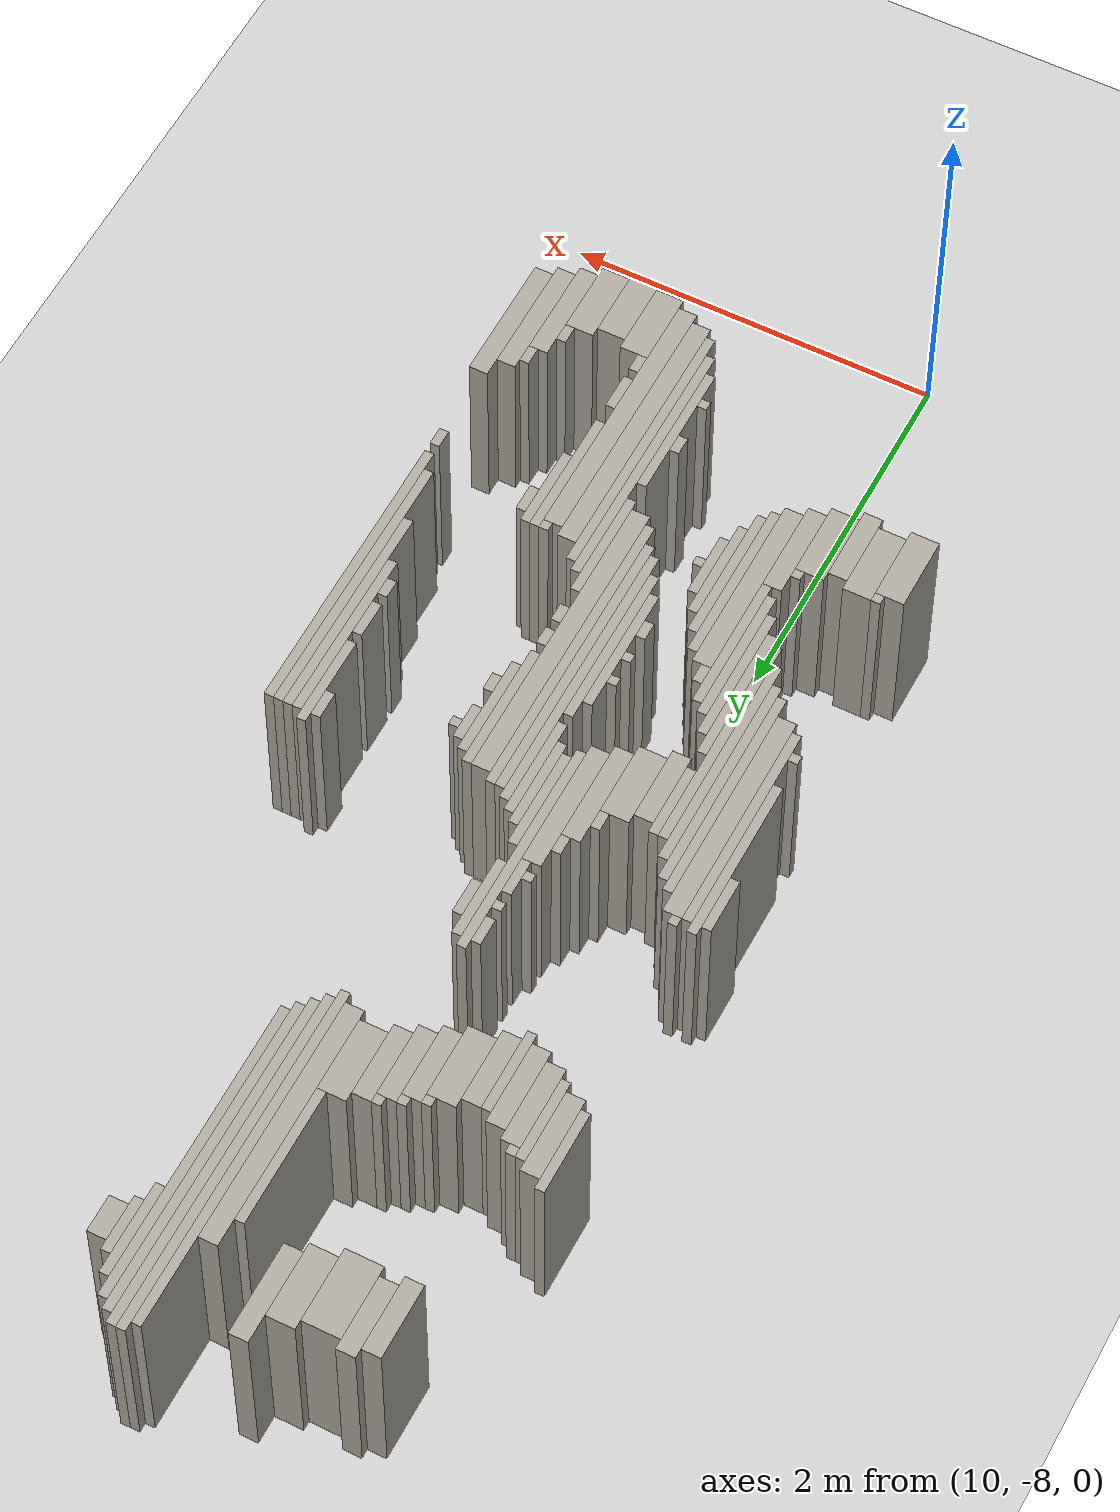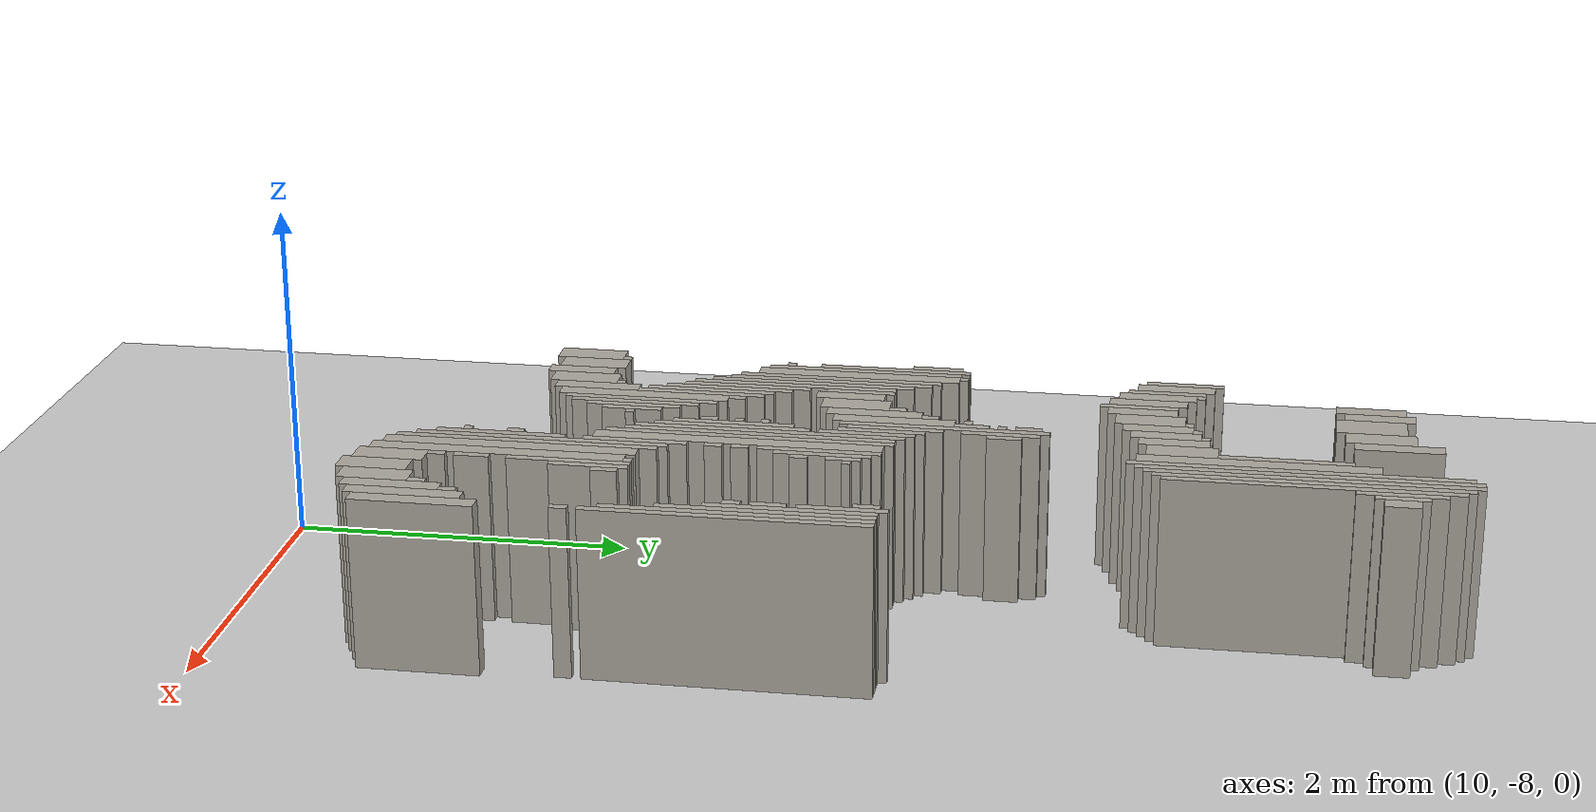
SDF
<sdf version="1.6">
 <world name="fr079_office">
  <include><uri>model://sun</uri></include>
  <include><uri>model://ground_plane</uri></include>
  <model name="fr079_office_walls">
   <static>true</static>
   <link name="w0021">
    <pose>11.277 -7.106 0.500 0 0 0</pose>
    <collision name="c"><geometry><box><size>0.150 0.400 1.000</size></box></geometry></collision>
    <visual name="v">
     <geometry><box><size>0.150 0.400 1.000</size></box></geometry>
     <material><ambient>0.68 0.66 0.62 1</ambient><diffuse>0.68 0.66 0.62 1</diffuse></material>
    </visual>
   </link>
   <link name="w0045">
    <pose>11.127 -7.056 0.500 0 0 0</pose>
    <collision name="c"><geometry><box><size>0.150 0.400 1.000</size></box></geometry></collision>
    <visual name="v">
     <geometry><box><size>0.150 0.400 1.000</size></box></geometry>
     <material><ambient>0.68 0.66 0.62 1</ambient><diffuse>0.68 0.66 0.62 1</diffuse></material>
    </visual>
   </link>
   <link name="w0046">
    <pose>11.427 -7.056 0.500 0 0 0</pose>
    <collision name="c"><geometry><box><size>0.150 0.400 1.000</size></box></geometry></collision>
    <visual name="v">
     <geometry><box><size>0.150 0.400 1.000</size></box></geometry>
     <material><ambient>0.68 0.66 0.62 1</ambient><diffuse>0.68 0.66 0.62 1</diffuse></material>
    </visual>
   </link>
   <link name="w0070">
    <pose>11.002 -6.481 0.500 0 0 0</pose>
    <collision name="c"><geometry><box><size>0.100 1.450 1.000</size></box></geometry></collision>
    <visual name="v">
     <geometry><box><size>0.100 1.450 1.000</size></box></geometry>
     <material><ambient>0.68 0.66 0.62 1</ambient><diffuse>0.68 0.66 0.62 1</diffuse></material>
    </visual>
   </link>
   <link name="w0071">
    <pose>11.552 -6.931 0.500 0 0 0</pose>
    <collision name="c"><geometry><box><size>0.100 0.550 1.000</size></box></geometry></collision>
    <visual name="v">
     <geometry><box><size>0.100 0.550 1.000</size></box></geometry>
     <material><ambient>0.68 0.66 0.62 1</ambient><diffuse>0.68 0.66 0.62 1</diffuse></material>
    </visual>
   </link>
   <link name="w0096">
    <pose>10.902 -6.431 0.500 0 0 0</pose>
    <collision name="c"><geometry><box><size>0.100 1.450 1.000</size></box></geometry></collision>
    <visual name="v">
     <geometry><box><size>0.100 1.450 1.000</size></box></geometry>
     <material><ambient>0.68 0.66 0.62 1</ambient><diffuse>0.68 0.66 0.62 1</diffuse></material>
    </visual>
   </link>
   <link name="w0097">
    <pose>11.652 -6.831 0.500 0 0 0</pose>
    <collision name="c"><geometry><box><size>0.100 0.650 1.000</size></box></geometry></collision>
    <visual name="v">
     <geometry><box><size>0.100 0.650 1.000</size></box></geometry>
     <material><ambient>0.68 0.66 0.62 1</ambient><diffuse>0.68 0.66 0.62 1</diffuse></material>
    </visual>
   </link>
   <link name="w0119">
    <pose>10.827 -6.356 0.500 0 0 0</pose>
    <collision name="c"><geometry><box><size>0.050 1.500 1.000</size></box></geometry></collision>
    <visual name="v">
     <geometry><box><size>0.050 1.500 1.000</size></box></geometry>
     <material><ambient>0.68 0.66 0.62 1</ambient><diffuse>0.68 0.66 0.62 1</diffuse></material>
    </visual>
   </link>
   <link name="w0120">
    <pose>11.752 -6.756 0.500 0 0 0</pose>
    <collision name="c"><geometry><box><size>0.100 0.700 1.000</size></box></geometry></collision>
    <visual name="v">
     <geometry><box><size>0.100 0.700 1.000</size></box></geometry>
     <material><ambient>0.68 0.66 0.62 1</ambient><diffuse>0.68 0.66 0.62 1</diffuse></material>
    </visual>
   </link>
   <link name="w0147">
    <pose>10.777 -6.281 0.500 0 0 0</pose>
    <collision name="c"><geometry><box><size>0.050 1.450 1.000</size></box></geometry></collision>
    <visual name="v">
     <geometry><box><size>0.050 1.450 1.000</size></box></geometry>
     <material><ambient>0.68 0.66 0.62 1</ambient><diffuse>0.68 0.66 0.62 1</diffuse></material>
    </visual>
   </link>
   <link name="w0173">
    <pose>10.727 -6.531 0.500 0 0 0</pose>
    <collision name="c"><geometry><box><size>0.050 0.750 1.000</size></box></geometry></collision>
    <visual name="v">
     <geometry><box><size>0.050 0.750 1.000</size></box></geometry>
     <material><ambient>0.68 0.66 0.62 1</ambient><diffuse>0.68 0.66 0.62 1</diffuse></material>
    </visual>
   </link>
   <link name="w0193">
    <pose>11.077 -6.806 0.500 0 0 0</pose>
    <collision name="c"><geometry><box><size>0.050 0.100 1.000</size></box></geometry></collision>
    <visual name="v">
     <geometry><box><size>0.050 0.100 1.000</size></box></geometry>
     <material><ambient>0.68 0.66 0.62 1</ambient><diffuse>0.68 0.66 0.62 1</diffuse></material>
    </visual>
   </link>
   <link name="w0194">
    <pose>11.477 -6.806 0.500 0 0 0</pose>
    <collision name="c"><geometry><box><size>0.050 0.100 1.000</size></box></geometry></collision>
    <visual name="v">
     <geometry><box><size>0.050 0.100 1.000</size></box></geometry>
     <material><ambient>0.68 0.66 0.62 1</ambient><diffuse>0.68 0.66 0.62 1</diffuse></material>
    </visual>
   </link>
   <link name="w0227">
    <pose>10.677 -6.731 0.500 0 0 0</pose>
    <collision name="c"><geometry><box><size>0.050 0.050 1.000</size></box></geometry></collision>
    <visual name="v">
     <geometry><box><size>0.050 0.050 1.000</size></box></geometry>
     <material><ambient>0.68 0.66 0.62 1</ambient><diffuse>0.68 0.66 0.62 1</diffuse></material>
    </visual>
   </link>
   <link name="w0241">
    <pose>11.077 -6.606 0.500 0 0 0</pose>
    <collision name="c"><geometry><box><size>0.050 0.200 1.000</size></box></geometry></collision>
    <visual name="v">
     <geometry><box><size>0.050 0.200 1.000</size></box></geometry>
     <material><ambient>0.68 0.66 0.62 1</ambient><diffuse>0.68 0.66 0.62 1</diffuse></material>
    </visual>
   </link>
   <link name="w0252">
    <pose>11.577 -6.606 0.500 0 0 0</pose>
    <collision name="c"><geometry><box><size>0.050 0.100 1.000</size></box></geometry></collision>
    <visual name="v">
     <geometry><box><size>0.050 0.100 1.000</size></box></geometry>
     <material><ambient>0.68 0.66 0.62 1</ambient><diffuse>0.68 0.66 0.62 1</diffuse></material>
    </visual>
   </link>
   <link name="w0292">
    <pose>9.377 -6.306 0.500 0 0 0</pose>
    <collision name="c"><geometry><box><size>0.150 0.400 1.000</size></box></geometry></collision>
    <visual name="v">
     <geometry><box><size>0.150 0.400 1.000</size></box></geometry>
     <material><ambient>0.68 0.66 0.62 1</ambient><diffuse>0.68 0.66 0.62 1</diffuse></material>
    </visual>
   </link>
   <link name="w0293">
    <pose>9.652 -6.306 0.500 0 0 0</pose>
    <collision name="c"><geometry><box><size>0.100 0.400 1.000</size></box></geometry></collision>
    <visual name="v">
     <geometry><box><size>0.100 0.400 1.000</size></box></geometry>
     <material><ambient>0.68 0.66 0.62 1</ambient><diffuse>0.68 0.66 0.62 1</diffuse></material>
    </visual>
   </link>
   <link name="w0294">
    <pose>10.677 -6.456 0.500 0 0 0</pose>
    <collision name="c"><geometry><box><size>0.050 0.100 1.000</size></box></geometry></collision>
    <visual name="v">
     <geometry><box><size>0.050 0.100 1.000</size></box></geometry>
     <material><ambient>0.68 0.66 0.62 1</ambient><diffuse>0.68 0.66 0.62 1</diffuse></material>
    </visual>
   </link>
   <link name="w0308">
    <pose>9.527 -6.256 0.500 0 0 0</pose>
    <collision name="c"><geometry><box><size>0.150 0.400 1.000</size></box></geometry></collision>
    <visual name="v">
     <geometry><box><size>0.150 0.400 1.000</size></box></geometry>
     <material><ambient>0.68 0.66 0.62 1</ambient><diffuse>0.68 0.66 0.62 1</diffuse></material>
    </visual>
   </link>
   <link name="w0309">
    <pose>9.777 -6.256 0.500 0 0 0</pose>
    <collision name="c"><geometry><box><size>0.150 0.400 1.000</size></box></geometry></collision>
    <visual name="v">
     <geometry><box><size>0.150 0.400 1.000</size></box></geometry>
     <material><ambient>0.68 0.66 0.62 1</ambient><diffuse>0.68 0.66 0.62 1</diffuse></material>
    </visual>
   </link>
   <link name="w0331">
    <pose>9.902 -6.156 0.500 0 0 0</pose>
    <collision name="c"><geometry><box><size>0.100 0.500 1.000</size></box></geometry></collision>
    <visual name="v">
     <geometry><box><size>0.100 0.500 1.000</size></box></geometry>
     <material><ambient>0.68 0.66 0.62 1</ambient><diffuse>0.68 0.66 0.62 1</diffuse></material>
    </visual>
   </link>
   <link name="w0332">
    <pose>11.077 -6.056 0.500 0 0 0</pose>
    <collision name="c"><geometry><box><size>0.050 0.700 1.000</size></box></geometry></collision>
    <visual name="v">
     <geometry><box><size>0.050 0.700 1.000</size></box></geometry>
     <material><ambient>0.68 0.66 0.62 1</ambient><diffuse>0.68 0.66 0.62 1</diffuse></material>
    </visual>
   </link>
   <link name="w0347">
    <pose>10.002 -5.856 0.500 0 0 0</pose>
    <collision name="c"><geometry><box><size>0.100 1.000 1.000</size></box></geometry></collision>
    <visual name="v">
     <geometry><box><size>0.100 1.000 1.000</size></box></geometry>
     <material><ambient>0.68 0.66 0.62 1</ambient><diffuse>0.68 0.66 0.62 1</diffuse></material>
    </visual>
   </link>
   <link name="w0358">
    <pose>10.077 -5.856 0.500 0 0 0</pose>
    <collision name="c"><geometry><box><size>0.050 0.900 1.000</size></box></geometry></collision>
    <visual name="v">
     <geometry><box><size>0.050 0.900 1.000</size></box></geometry>
     <material><ambient>0.68 0.66 0.62 1</ambient><diffuse>0.68 0.66 0.62 1</diffuse></material>
    </visual>
   </link>
   <link name="w0373">
    <pose>10.127 -5.881 0.500 0 0 0</pose>
    <collision name="c"><geometry><box><size>0.050 0.750 1.000</size></box></geometry></collision>
    <visual name="v">
     <geometry><box><size>0.050 0.750 1.000</size></box></geometry>
     <material><ambient>0.68 0.66 0.62 1</ambient><diffuse>0.68 0.66 0.62 1</diffuse></material>
    </visual>
   </link>
   <link name="w0389">
    <pose>10.177 -5.881 0.500 0 0 0</pose>
    <collision name="c"><geometry><box><size>0.050 0.550 1.000</size></box></geometry></collision>
    <visual name="v">
     <geometry><box><size>0.050 0.550 1.000</size></box></geometry>
     <material><ambient>0.68 0.66 0.62 1</ambient><diffuse>0.68 0.66 0.62 1</diffuse></material>
    </visual>
   </link>
   <link name="w0390">
    <pose>11.127 -5.931 0.500 0 0 0</pose>
    <collision name="c"><geometry><box><size>0.050 0.450 1.000</size></box></geometry></collision>
    <visual name="v">
     <geometry><box><size>0.050 0.450 1.000</size></box></geometry>
     <material><ambient>0.68 0.66 0.62 1</ambient><diffuse>0.68 0.66 0.62 1</diffuse></material>
    </visual>
   </link>
   <link name="w0402">
    <pose>9.427 -6.081 0.500 0 0 0</pose>
    <collision name="c"><geometry><box><size>0.050 0.050 1.000</size></box></geometry></collision>
    <visual name="v">
     <geometry><box><size>0.050 0.050 1.000</size></box></geometry>
     <material><ambient>0.68 0.66 0.62 1</ambient><diffuse>0.68 0.66 0.62 1</diffuse></material>
    </visual>
   </link>
   <link name="w0414">
    <pose>9.827 -6.031 0.500 0 0 0</pose>
    <collision name="c"><geometry><box><size>0.050 0.050 1.000</size></box></geometry></collision>
    <visual name="v">
     <geometry><box><size>0.050 0.050 1.000</size></box></geometry>
     <material><ambient>0.68 0.66 0.62 1</ambient><diffuse>0.68 0.66 0.62 1</diffuse></material>
    </visual>
   </link>
   <link name="w0415">
    <pose>10.227 -5.881 0.500 0 0 0</pose>
    <collision name="c"><geometry><box><size>0.050 0.350 1.000</size></box></geometry></collision>
    <visual name="v">
     <geometry><box><size>0.050 0.350 1.000</size></box></geometry>
     <material><ambient>0.68 0.66 0.62 1</ambient><diffuse>0.68 0.66 0.62 1</diffuse></material>
    </visual>
   </link>
   <link name="w0416">
    <pose>10.727 -5.756 0.500 0 0 0</pose>
    <collision name="c"><geometry><box><size>0.050 0.600 1.000</size></box></geometry></collision>
    <visual name="v">
     <geometry><box><size>0.050 0.600 1.000</size></box></geometry>
     <material><ambient>0.68 0.66 0.62 1</ambient><diffuse>0.68 0.66 0.62 1</diffuse></material>
    </visual>
   </link>
   <link name="w0427">
    <pose>10.652 -5.181 0.500 0 0 0</pose>
    <collision name="c"><geometry><box><size>0.100 1.650 1.000</size></box></geometry></collision>
    <visual name="v">
     <geometry><box><size>0.100 1.650 1.000</size></box></geometry>
     <material><ambient>0.68 0.66 0.62 1</ambient><diffuse>0.68 0.66 0.62 1</diffuse></material>
    </visual>
   </link>
   <link name="w0428">
    <pose>11.727 -5.956 0.500 0 0 0</pose>
    <collision name="c"><geometry><box><size>0.050 0.100 1.000</size></box></geometry></collision>
    <visual name="v">
     <geometry><box><size>0.050 0.100 1.000</size></box></geometry>
     <material><ambient>0.68 0.66 0.62 1</ambient><diffuse>0.68 0.66 0.62 1</diffuse></material>
    </visual>
   </link>
   <link name="w0444">
    <pose>10.577 -5.131 0.500 0 0 0</pose>
    <collision name="c"><geometry><box><size>0.050 1.650 1.000</size></box></geometry></collision>
    <visual name="v">
     <geometry><box><size>0.050 1.650 1.000</size></box></geometry>
     <material><ambient>0.68 0.66 0.62 1</ambient><diffuse>0.68 0.66 0.62 1</diffuse></material>
    </visual>
   </link>
   <link name="w0459">
    <pose>9.927 -5.531 0.500 0 0 0</pose>
    <collision name="c"><geometry><box><size>0.050 0.750 1.000</size></box></geometry></collision>
    <visual name="v">
     <geometry><box><size>0.050 0.750 1.000</size></box></geometry>
     <material><ambient>0.68 0.66 0.62 1</ambient><diffuse>0.68 0.66 0.62 1</diffuse></material>
    </visual>
   </link>
   <link name="w0460">
    <pose>10.277 -5.881 0.500 0 0 0</pose>
    <collision name="c"><geometry><box><size>0.050 0.050 1.000</size></box></geometry></collision>
    <visual name="v">
     <geometry><box><size>0.050 0.050 1.000</size></box></geometry>
     <material><ambient>0.68 0.66 0.62 1</ambient><diffuse>0.68 0.66 0.62 1</diffuse></material>
    </visual>
   </link>
   <link name="w0461">
    <pose>11.177 -5.831 0.500 0 0 0</pose>
    <collision name="c"><geometry><box><size>0.050 0.150 1.000</size></box></geometry></collision>
    <visual name="v">
     <geometry><box><size>0.050 0.150 1.000</size></box></geometry>
     <material><ambient>0.68 0.66 0.62 1</ambient><diffuse>0.68 0.66 0.62 1</diffuse></material>
    </visual>
   </link>
   <link name="w0473">
    <pose>9.877 -5.481 0.500 0 0 0</pose>
    <collision name="c"><geometry><box><size>0.050 0.750 1.000</size></box></geometry></collision>
    <visual name="v">
     <geometry><box><size>0.050 0.750 1.000</size></box></geometry>
     <material><ambient>0.68 0.66 0.62 1</ambient><diffuse>0.68 0.66 0.62 1</diffuse></material>
    </visual>
   </link>
   <link name="w0474">
    <pose>10.527 -5.081 0.500 0 0 0</pose>
    <collision name="c"><geometry><box><size>0.050 1.550 1.000</size></box></geometry></collision>
    <visual name="v">
     <geometry><box><size>0.050 1.550 1.000</size></box></geometry>
     <material><ambient>0.68 0.66 0.62 1</ambient><diffuse>0.68 0.66 0.62 1</diffuse></material>
    </visual>
   </link>
   <link name="w0475">
    <pose>11.727 -5.056 0.500 0 0 0</pose>
    <collision name="c"><geometry><box><size>0.050 1.600 1.000</size></box></geometry></collision>
    <visual name="v">
     <geometry><box><size>0.050 1.600 1.000</size></box></geometry>
     <material><ambient>0.68 0.66 0.62 1</ambient><diffuse>0.68 0.66 0.62 1</diffuse></material>
    </visual>
   </link>
   <link name="w0488">
    <pose>10.477 -5.031 0.500 0 0 0</pose>
    <collision name="c"><geometry><box><size>0.050 1.550 1.000</size></box></geometry></collision>
    <visual name="v">
     <geometry><box><size>0.050 1.550 1.000</size></box></geometry>
     <material><ambient>0.68 0.66 0.62 1</ambient><diffuse>0.68 0.66 0.62 1</diffuse></material>
    </visual>
   </link>
   <link name="w0502">
    <pose>9.827 -5.381 0.500 0 0 0</pose>
    <collision name="c"><geometry><box><size>0.050 0.750 1.000</size></box></geometry></collision>
    <visual name="v">
     <geometry><box><size>0.050 0.750 1.000</size></box></geometry>
     <material><ambient>0.68 0.66 0.62 1</ambient><diffuse>0.68 0.66 0.62 1</diffuse></material>
    </visual>
   </link>
   <link name="w0503">
    <pose>11.027 -5.731 0.500 0 0 0</pose>
    <collision name="c"><geometry><box><size>0.050 0.050 1.000</size></box></geometry></collision>
    <visual name="v">
     <geometry><box><size>0.050 0.050 1.000</size></box></geometry>
     <material><ambient>0.68 0.66 0.62 1</ambient><diffuse>0.68 0.66 0.62 1</diffuse></material>
    </visual>
   </link>
   <link name="w0504">
    <pose>11.677 -5.006 0.500 0 0 0</pose>
    <collision name="c"><geometry><box><size>0.050 1.500 1.000</size></box></geometry></collision>
    <visual name="v">
     <geometry><box><size>0.050 1.500 1.000</size></box></geometry>
     <material><ambient>0.68 0.66 0.62 1</ambient><diffuse>0.68 0.66 0.62 1</diffuse></material>
    </visual>
   </link>
   <link name="w0516">
    <pose>10.427 -5.256 0.500 0 0 0</pose>
    <collision name="c"><geometry><box><size>0.050 0.900 1.000</size></box></geometry></collision>
    <visual name="v">
     <geometry><box><size>0.050 0.900 1.000</size></box></geometry>
     <material><ambient>0.68 0.66 0.62 1</ambient><diffuse>0.68 0.66 0.62 1</diffuse></material>
    </visual>
   </link>
   <link name="w0525">
    <pose>9.777 -5.281 0.500 0 0 0</pose>
    <collision name="c"><geometry><box><size>0.050 0.750 1.000</size></box></geometry></collision>
    <visual name="v">
     <geometry><box><size>0.050 0.750 1.000</size></box></geometry>
     <material><ambient>0.68 0.66 0.62 1</ambient><diffuse>0.68 0.66 0.62 1</diffuse></material>
    </visual>
   </link>
   <link name="w0536">
    <pose>9.727 -5.006 0.500 0 0 0</pose>
    <collision name="c"><geometry><box><size>0.050 1.200 1.000</size></box></geometry></collision>
    <visual name="v">
     <geometry><box><size>0.050 1.200 1.000</size></box></geometry>
     <material><ambient>0.68 0.66 0.62 1</ambient><diffuse>0.68 0.66 0.62 1</diffuse></material>
    </visual>
   </link>
   <link name="w0537">
    <pose>10.377 -5.256 0.500 0 0 0</pose>
    <collision name="c"><geometry><box><size>0.050 0.700 1.000</size></box></geometry></collision>
    <visual name="v">
     <geometry><box><size>0.050 0.700 1.000</size></box></geometry>
     <material><ambient>0.68 0.66 0.62 1</ambient><diffuse>0.68 0.66 0.62 1</diffuse></material>
    </visual>
   </link>
   <link name="w0560">
    <pose>9.677 -4.906 0.500 0 0 0</pose>
    <collision name="c"><geometry><box><size>0.050 1.200 1.000</size></box></geometry></collision>
    <visual name="v">
     <geometry><box><size>0.050 1.200 1.000</size></box></geometry>
     <material><ambient>0.68 0.66 0.62 1</ambient><diffuse>0.68 0.66 0.62 1</diffuse></material>
    </visual>
   </link>
   <link name="w0569">
    <pose>10.327 -5.406 0.500 0 0 0</pose>
    <collision name="c"><geometry><box><size>0.050 0.100 1.000</size></box></geometry></collision>
    <visual name="v">
     <geometry><box><size>0.050 0.100 1.000</size></box></geometry>
     <material><ambient>0.68 0.66 0.62 1</ambient><diffuse>0.68 0.66 0.62 1</diffuse></material>
    </visual>
   </link>
   <link name="w0570">
    <pose>11.627 -4.856 0.500 0 0 0</pose>
    <collision name="c"><geometry><box><size>0.050 1.200 1.000</size></box></geometry></collision>
    <visual name="v">
     <geometry><box><size>0.050 1.200 1.000</size></box></geometry>
     <material><ambient>0.68 0.66 0.62 1</ambient><diffuse>0.68 0.66 0.62 1</diffuse></material>
    </visual>
   </link>
   <link name="w0582">
    <pose>9.627 -4.806 0.500 0 0 0</pose>
    <collision name="c"><geometry><box><size>0.050 1.200 1.000</size></box></geometry></collision>
    <visual name="v">
     <geometry><box><size>0.050 1.200 1.000</size></box></geometry>
     <material><ambient>0.68 0.66 0.62 1</ambient><diffuse>0.68 0.66 0.62 1</diffuse></material>
    </visual>
   </link>
   <link name="w0594">
    <pose>9.577 -4.756 0.500 0 0 0</pose>
    <collision name="c"><geometry><box><size>0.050 1.200 1.000</size></box></geometry></collision>
    <visual name="v">
     <geometry><box><size>0.050 1.200 1.000</size></box></geometry>
     <material><ambient>0.68 0.66 0.62 1</ambient><diffuse>0.68 0.66 0.62 1</diffuse></material>
    </visual>
   </link>
   <link name="w0595">
    <pose>9.977 -5.306 0.500 0 0 0</pose>
    <collision name="c"><geometry><box><size>0.050 0.100 1.000</size></box></geometry></collision>
    <visual name="v">
     <geometry><box><size>0.050 0.100 1.000</size></box></geometry>
     <material><ambient>0.68 0.66 0.62 1</ambient><diffuse>0.68 0.66 0.62 1</diffuse></material>
    </visual>
   </link>
   <link name="w0596">
    <pose>10.727 -5.306 0.500 0 0 0</pose>
    <collision name="c"><geometry><box><size>0.050 0.100 1.000</size></box></geometry></collision>
    <visual name="v">
     <geometry><box><size>0.050 0.100 1.000</size></box></geometry>
     <material><ambient>0.68 0.66 0.62 1</ambient><diffuse>0.68 0.66 0.62 1</diffuse></material>
    </visual>
   </link>
   <link name="w0624">
    <pose>9.502 -4.656 0.500 0 0 0</pose>
    <collision name="c"><geometry><box><size>0.100 1.200 1.000</size></box></geometry></collision>
    <visual name="v">
     <geometry><box><size>0.100 1.200 1.000</size></box></geometry>
     <material><ambient>0.68 0.66 0.62 1</ambient><diffuse>0.68 0.66 0.62 1</diffuse></material>
    </visual>
   </link>
   <link name="w0625">
    <pose>10.327 -5.231 0.500 0 0 0</pose>
    <collision name="c"><geometry><box><size>0.050 0.050 1.000</size></box></geometry></collision>
    <visual name="v">
     <geometry><box><size>0.050 0.050 1.000</size></box></geometry>
     <material><ambient>0.68 0.66 0.62 1</ambient><diffuse>0.68 0.66 0.62 1</diffuse></material>
    </visual>
   </link>
   <link name="w0642">
    <pose>9.427 -4.631 0.500 0 0 0</pose>
    <collision name="c"><geometry><box><size>0.050 1.150 1.000</size></box></geometry></collision>
    <visual name="v">
     <geometry><box><size>0.050 1.150 1.000</size></box></geometry>
     <material><ambient>0.68 0.66 0.62 1</ambient><diffuse>0.68 0.66 0.62 1</diffuse></material>
    </visual>
   </link>
   <link name="w0643">
    <pose>10.727 -5.156 0.500 0 0 0</pose>
    <collision name="c"><geometry><box><size>0.050 0.100 1.000</size></box></geometry></collision>
    <visual name="v">
     <geometry><box><size>0.050 0.100 1.000</size></box></geometry>
     <material><ambient>0.68 0.66 0.62 1</ambient><diffuse>0.68 0.66 0.62 1</diffuse></material>
    </visual>
   </link>
   <link name="w0644">
    <pose>11.577 -4.731 0.500 0 0 0</pose>
    <collision name="c"><geometry><box><size>0.050 0.950 1.000</size></box></geometry></collision>
    <visual name="v">
     <geometry><box><size>0.050 0.950 1.000</size></box></geometry>
     <material><ambient>0.68 0.66 0.62 1</ambient><diffuse>0.68 0.66 0.62 1</diffuse></material>
    </visual>
   </link>
   <link name="w0666">
    <pose>9.377 -5.081 0.500 0 0 0</pose>
    <collision name="c"><geometry><box><size>0.050 0.050 1.000</size></box></geometry></collision>
    <visual name="v">
     <geometry><box><size>0.050 0.050 1.000</size></box></geometry>
     <material><ambient>0.68 0.66 0.62 1</ambient><diffuse>0.68 0.66 0.62 1</diffuse></material>
    </visual>
   </link>
   <link name="w0667">
    <pose>10.327 -5.081 0.500 0 0 0</pose>
    <collision name="c"><geometry><box><size>0.050 0.050 1.000</size></box></geometry></collision>
    <visual name="v">
     <geometry><box><size>0.050 0.050 1.000</size></box></geometry>
     <material><ambient>0.68 0.66 0.62 1</ambient><diffuse>0.68 0.66 0.62 1</diffuse></material>
    </visual>
   </link>
   <link name="w0668">
    <pose>11.527 -5.056 0.500 0 0 0</pose>
    <collision name="c"><geometry><box><size>0.050 0.100 1.000</size></box></geometry></collision>
    <visual name="v">
     <geometry><box><size>0.050 0.100 1.000</size></box></geometry>
     <material><ambient>0.68 0.66 0.62 1</ambient><diffuse>0.68 0.66 0.62 1</diffuse></material>
    </visual>
   </link>
   <link name="w0678">
    <pose>10.727 -4.706 0.500 0 0 0</pose>
    <collision name="c"><geometry><box><size>0.050 0.700 1.000</size></box></geometry></collision>
    <visual name="v">
     <geometry><box><size>0.050 0.700 1.000</size></box></geometry>
     <material><ambient>0.68 0.66 0.62 1</ambient><diffuse>0.68 0.66 0.62 1</diffuse></material>
    </visual>
   </link>
   <link name="w0699">
    <pose>10.777 -4.681 0.500 0 0 0</pose>
    <collision name="c"><geometry><box><size>0.050 0.550 1.000</size></box></geometry></collision>
    <visual name="v">
     <geometry><box><size>0.050 0.550 1.000</size></box></geometry>
     <material><ambient>0.68 0.66 0.62 1</ambient><diffuse>0.68 0.66 0.62 1</diffuse></material>
    </visual>
   </link>
   <link name="w0700">
    <pose>11.527 -4.856 0.500 0 0 0</pose>
    <collision name="c"><geometry><box><size>0.050 0.200 1.000</size></box></geometry></collision>
    <visual name="v">
     <geometry><box><size>0.050 0.200 1.000</size></box></geometry>
     <material><ambient>0.68 0.66 0.62 1</ambient><diffuse>0.68 0.66 0.62 1</diffuse></material>
    </visual>
   </link>
   <link name="w0708">
    <pose>9.377 -4.456 0.500 0 0 0</pose>
    <collision name="c"><geometry><box><size>0.050 0.900 1.000</size></box></geometry></collision>
    <visual name="v">
     <geometry><box><size>0.050 0.900 1.000</size></box></geometry>
     <material><ambient>0.68 0.66 0.62 1</ambient><diffuse>0.68 0.66 0.62 1</diffuse></material>
    </visual>
   </link>
   <link name="w0722">
    <pose>9.852 -4.656 0.500 0 0 0</pose>
    <collision name="c"><geometry><box><size>0.100 0.400 1.000</size></box></geometry></collision>
    <visual name="v">
     <geometry><box><size>0.100 0.400 1.000</size></box></geometry>
     <material><ambient>0.68 0.66 0.62 1</ambient><diffuse>0.68 0.66 0.62 1</diffuse></material>
    </visual>
   </link>
   <link name="w0723">
    <pose>10.827 -4.806 0.500 0 0 0</pose>
    <collision name="c"><geometry><box><size>0.050 0.100 1.000</size></box></geometry></collision>
    <visual name="v">
     <geometry><box><size>0.050 0.100 1.000</size></box></geometry>
     <material><ambient>0.68 0.66 0.62 1</ambient><diffuse>0.68 0.66 0.62 1</diffuse></material>
    </visual>
   </link>
   <link name="w0733">
    <pose>9.777 -4.606 0.500 0 0 0</pose>
    <collision name="c"><geometry><box><size>0.050 0.400 1.000</size></box></geometry></collision>
    <visual name="v">
     <geometry><box><size>0.050 0.400 1.000</size></box></geometry>
     <material><ambient>0.68 0.66 0.62 1</ambient><diffuse>0.68 0.66 0.62 1</diffuse></material>
    </visual>
   </link>
   <link name="w0734">
    <pose>9.977 -4.606 0.500 0 0 0</pose>
    <collision name="c"><geometry><box><size>0.150 0.400 1.000</size></box></geometry></collision>
    <visual name="v">
     <geometry><box><size>0.150 0.400 1.000</size></box></geometry>
     <material><ambient>0.68 0.66 0.62 1</ambient><diffuse>0.68 0.66 0.62 1</diffuse></material>
    </visual>
   </link>
   <link name="w0749">
    <pose>10.102 -4.481 0.500 0 0 0</pose>
    <collision name="c"><geometry><box><size>0.100 0.550 1.000</size></box></geometry></collision>
    <visual name="v">
     <geometry><box><size>0.100 0.550 1.000</size></box></geometry>
     <material><ambient>0.68 0.66 0.62 1</ambient><diffuse>0.68 0.66 0.62 1</diffuse></material>
    </visual>
   </link>
   <link name="w0750">
    <pose>10.427 -4.481 0.500 0 0 0</pose>
    <collision name="c"><geometry><box><size>0.050 0.550 1.000</size></box></geometry></collision>
    <visual name="v">
     <geometry><box><size>0.050 0.550 1.000</size></box></geometry>
     <material><ambient>0.68 0.66 0.62 1</ambient><diffuse>0.68 0.66 0.62 1</diffuse></material>
    </visual>
   </link>
   <link name="w0761">
    <pose>10.202 -4.356 0.500 0 0 0</pose>
    <collision name="c"><geometry><box><size>0.100 0.700 1.000</size></box></geometry></collision>
    <visual name="v">
     <geometry><box><size>0.100 0.700 1.000</size></box></geometry>
     <material><ambient>0.68 0.66 0.62 1</ambient><diffuse>0.68 0.66 0.62 1</diffuse></material>
    </visual>
   </link>
   <link name="w0762">
    <pose>11.527 -4.456 0.500 0 0 0</pose>
    <collision name="c"><geometry><box><size>0.050 0.500 1.000</size></box></geometry></collision>
    <visual name="v">
     <geometry><box><size>0.050 0.500 1.000</size></box></geometry>
     <material><ambient>0.68 0.66 0.62 1</ambient><diffuse>0.68 0.66 0.62 1</diffuse></material>
    </visual>
   </link>
   <link name="w0777">
    <pose>10.277 -4.056 0.500 0 0 0</pose>
    <collision name="c"><geometry><box><size>0.050 1.200 1.000</size></box></geometry></collision>
    <visual name="v">
     <geometry><box><size>0.050 1.200 1.000</size></box></geometry>
     <material><ambient>0.68 0.66 0.62 1</ambient><diffuse>0.68 0.66 0.62 1</diffuse></material>
    </visual>
   </link>
   <link name="w0778">
    <pose>10.377 -4.406 0.500 0 0 0</pose>
    <collision name="c"><geometry><box><size>0.050 0.500 1.000</size></box></geometry></collision>
    <visual name="v">
     <geometry><box><size>0.050 0.500 1.000</size></box></geometry>
     <material><ambient>0.68 0.66 0.62 1</ambient><diffuse>0.68 0.66 0.62 1</diffuse></material>
    </visual>
   </link>
   <link name="w0779">
    <pose>10.827 -4.556 0.500 0 0 0</pose>
    <collision name="c"><geometry><box><size>0.050 0.200 1.000</size></box></geometry></collision>
    <visual name="v">
     <geometry><box><size>0.050 0.200 1.000</size></box></geometry>
     <material><ambient>0.68 0.66 0.62 1</ambient><diffuse>0.68 0.66 0.62 1</diffuse></material>
    </visual>
   </link>
   <link name="w0790">
    <pose>10.327 -4.331 0.500 0 0 0</pose>
    <collision name="c"><geometry><box><size>0.050 0.550 1.000</size></box></geometry></collision>
    <visual name="v">
     <geometry><box><size>0.050 0.550 1.000</size></box></geometry>
     <material><ambient>0.68 0.66 0.62 1</ambient><diffuse>0.68 0.66 0.62 1</diffuse></material>
    </visual>
   </link>
   <link name="w0811">
    <pose>10.877 -4.531 0.500 0 0 0</pose>
    <collision name="c"><geometry><box><size>0.050 0.050 1.000</size></box></geometry></collision>
    <visual name="v">
     <geometry><box><size>0.050 0.050 1.000</size></box></geometry>
     <material><ambient>0.68 0.66 0.62 1</ambient><diffuse>0.68 0.66 0.62 1</diffuse></material>
    </visual>
   </link>
   <link name="w0854">
    <pose>10.027 -4.356 0.500 0 0 0</pose>
    <collision name="c"><geometry><box><size>0.050 0.100 1.000</size></box></geometry></collision>
    <visual name="v">
     <geometry><box><size>0.050 0.100 1.000</size></box></geometry>
     <material><ambient>0.68 0.66 0.62 1</ambient><diffuse>0.68 0.66 0.62 1</diffuse></material>
    </visual>
   </link>
   <link name="w0855">
    <pose>11.477 -4.331 0.500 0 0 0</pose>
    <collision name="c"><geometry><box><size>0.050 0.150 1.000</size></box></geometry></collision>
    <visual name="v">
     <geometry><box><size>0.050 0.150 1.000</size></box></geometry>
     <material><ambient>0.68 0.66 0.62 1</ambient><diffuse>0.68 0.66 0.62 1</diffuse></material>
    </visual>
   </link>
   <link name="w0869">
    <pose>9.327 -4.206 0.500 0 0 0</pose>
    <collision name="c"><geometry><box><size>0.050 0.300 1.000</size></box></geometry></collision>
    <visual name="v">
     <geometry><box><size>0.050 0.300 1.000</size></box></geometry>
     <material><ambient>0.68 0.66 0.62 1</ambient><diffuse>0.68 0.66 0.62 1</diffuse></material>
    </visual>
   </link>
   <link name="w0917">
    <pose>10.127 -4.156 0.500 0 0 0</pose>
    <collision name="c"><geometry><box><size>0.050 0.100 1.000</size></box></geometry></collision>
    <visual name="v">
     <geometry><box><size>0.050 0.100 1.000</size></box></geometry>
     <material><ambient>0.68 0.66 0.62 1</ambient><diffuse>0.68 0.66 0.62 1</diffuse></material>
    </visual>
   </link>
   <link name="w0958">
    <pose>9.477 -4.031 0.500 0 0 0</pose>
    <collision name="c"><geometry><box><size>0.050 0.050 1.000</size></box></geometry></collision>
    <visual name="v">
     <geometry><box><size>0.050 0.050 1.000</size></box></geometry>
     <material><ambient>0.68 0.66 0.62 1</ambient><diffuse>0.68 0.66 0.62 1</diffuse></material>
    </visual>
   </link>
   <link name="w0973">
    <pose>10.227 -3.906 0.500 0 0 0</pose>
    <collision name="c"><geometry><box><size>0.050 0.200 1.000</size></box></geometry></collision>
    <visual name="v">
     <geometry><box><size>0.050 0.200 1.000</size></box></geometry>
     <material><ambient>0.68 0.66 0.62 1</ambient><diffuse>0.68 0.66 0.62 1</diffuse></material>
    </visual>
   </link>
   <link name="w0985">
    <pose>10.177 -3.931 0.500 0 0 0</pose>
    <collision name="c"><geometry><box><size>0.050 0.050 1.000</size></box></geometry></collision>
    <visual name="v">
     <geometry><box><size>0.050 0.050 1.000</size></box></geometry>
     <material><ambient>0.68 0.66 0.62 1</ambient><diffuse>0.68 0.66 0.62 1</diffuse></material>
    </visual>
   </link>
   <link name="w0986">
    <pose>10.327 -3.731 0.500 0 0 0</pose>
    <collision name="c"><geometry><box><size>0.050 0.450 1.000</size></box></geometry></collision>
    <visual name="v">
     <geometry><box><size>0.050 0.450 1.000</size></box></geometry>
     <material><ambient>0.68 0.66 0.62 1</ambient><diffuse>0.68 0.66 0.62 1</diffuse></material>
    </visual>
   </link>
   <link name="w1024">
    <pose>10.377 -3.706 0.500 0 0 0</pose>
    <collision name="c"><geometry><box><size>0.050 0.200 1.000</size></box></geometry></collision>
    <visual name="v">
     <geometry><box><size>0.050 0.200 1.000</size></box></geometry>
     <material><ambient>0.68 0.66 0.62 1</ambient><diffuse>0.68 0.66 0.62 1</diffuse></material>
    </visual>
   </link>
   <link name="w1037">
    <pose>10.227 -3.731 0.500 0 0 0</pose>
    <collision name="c"><geometry><box><size>0.050 0.050 1.000</size></box></geometry></collision>
    <visual name="v">
     <geometry><box><size>0.050 0.050 1.000</size></box></geometry>
     <material><ambient>0.68 0.66 0.62 1</ambient><diffuse>0.68 0.66 0.62 1</diffuse></material>
    </visual>
   </link>
   <link name="w1060">
    <pose>10.227 -3.581 0.500 0 0 0</pose>
    <collision name="c"><geometry><box><size>0.050 0.150 1.000</size></box></geometry></collision>
    <visual name="v">
     <geometry><box><size>0.050 0.150 1.000</size></box></geometry>
     <material><ambient>0.68 0.66 0.62 1</ambient><diffuse>0.68 0.66 0.62 1</diffuse></material>
    </visual>
   </link>
   <link name="w1122">
    <pose>9.777 -2.981 0.500 0 0 0</pose>
    <collision name="c"><geometry><box><size>0.050 0.450 1.000</size></box></geometry></collision>
    <visual name="v">
     <geometry><box><size>0.050 0.450 1.000</size></box></geometry>
     <material><ambient>0.68 0.66 0.62 1</ambient><diffuse>0.68 0.66 0.62 1</diffuse></material>
    </visual>
   </link>
   <link name="w1127">
    <pose>9.702 -2.931 0.500 0 0 0</pose>
    <collision name="c"><geometry><box><size>0.100 0.450 1.000</size></box></geometry></collision>
    <visual name="v">
     <geometry><box><size>0.100 0.450 1.000</size></box></geometry>
     <material><ambient>0.68 0.66 0.62 1</ambient><diffuse>0.68 0.66 0.62 1</diffuse></material>
    </visual>
   </link>
   <link name="w1128">
    <pose>9.852 -2.956 0.500 0 0 0</pose>
    <collision name="c"><geometry><box><size>0.100 0.400 1.000</size></box></geometry></collision>
    <visual name="v">
     <geometry><box><size>0.100 0.400 1.000</size></box></geometry>
     <material><ambient>0.68 0.66 0.62 1</ambient><diffuse>0.68 0.66 0.62 1</diffuse></material>
    </visual>
   </link>
   <link name="w1136">
    <pose>9.602 -2.881 0.500 0 0 0</pose>
    <collision name="c"><geometry><box><size>0.100 0.450 1.000</size></box></geometry></collision>
    <visual name="v">
     <geometry><box><size>0.100 0.450 1.000</size></box></geometry>
     <material><ambient>0.68 0.66 0.62 1</ambient><diffuse>0.68 0.66 0.62 1</diffuse></material>
    </visual>
   </link>
   <link name="w1137">
    <pose>9.977 -2.906 0.500 0 0 0</pose>
    <collision name="c"><geometry><box><size>0.150 0.400 1.000</size></box></geometry></collision>
    <visual name="v">
     <geometry><box><size>0.150 0.400 1.000</size></box></geometry>
     <material><ambient>0.68 0.66 0.62 1</ambient><diffuse>0.68 0.66 0.62 1</diffuse></material>
    </visual>
   </link>
   <link name="w1143">
    <pose>9.527 -2.831 0.500 0 0 0</pose>
    <collision name="c"><geometry><box><size>0.050 0.450 1.000</size></box></geometry></collision>
    <visual name="v">
     <geometry><box><size>0.050 0.450 1.000</size></box></geometry>
     <material><ambient>0.68 0.66 0.62 1</ambient><diffuse>0.68 0.66 0.62 1</diffuse></material>
    </visual>
   </link>
   <link name="w1144">
    <pose>10.102 -2.856 0.500 0 0 0</pose>
    <collision name="c"><geometry><box><size>0.100 0.400 1.000</size></box></geometry></collision>
    <visual name="v">
     <geometry><box><size>0.100 0.400 1.000</size></box></geometry>
     <material><ambient>0.68 0.66 0.62 1</ambient><diffuse>0.68 0.66 0.62 1</diffuse></material>
    </visual>
   </link>
   <link name="w1152">
    <pose>9.452 -2.781 0.500 0 0 0</pose>
    <collision name="c"><geometry><box><size>0.100 0.450 1.000</size></box></geometry></collision>
    <visual name="v">
     <geometry><box><size>0.100 0.450 1.000</size></box></geometry>
     <material><ambient>0.68 0.66 0.62 1</ambient><diffuse>0.68 0.66 0.62 1</diffuse></material>
    </visual>
   </link>
   <link name="w1153">
    <pose>10.202 -2.806 0.500 0 0 0</pose>
    <collision name="c"><geometry><box><size>0.100 0.400 1.000</size></box></geometry></collision>
    <visual name="v">
     <geometry><box><size>0.100 0.400 1.000</size></box></geometry>
     <material><ambient>0.68 0.66 0.62 1</ambient><diffuse>0.68 0.66 0.62 1</diffuse></material>
    </visual>
   </link>
   <link name="w1154">
    <pose>10.627 -2.056 0.500 0 0 0</pose>
    <collision name="c"><geometry><box><size>0.050 1.900 1.000</size></box></geometry></collision>
    <visual name="v">
     <geometry><box><size>0.050 1.900 1.000</size></box></geometry>
     <material><ambient>0.68 0.66 0.62 1</ambient><diffuse>0.68 0.66 0.62 1</diffuse></material>
    </visual>
   </link>
   <link name="w1164">
    <pose>9.377 -2.731 0.500 0 0 0</pose>
    <collision name="c"><geometry><box><size>0.050 0.450 1.000</size></box></geometry></collision>
    <visual name="v">
     <geometry><box><size>0.050 0.450 1.000</size></box></geometry>
     <material><ambient>0.68 0.66 0.62 1</ambient><diffuse>0.68 0.66 0.62 1</diffuse></material>
    </visual>
   </link>
   <link name="w1165">
    <pose>10.302 -2.756 0.500 0 0 0</pose>
    <collision name="c"><geometry><box><size>0.100 0.400 1.000</size></box></geometry></collision>
    <visual name="v">
     <geometry><box><size>0.100 0.400 1.000</size></box></geometry>
     <material><ambient>0.68 0.66 0.62 1</ambient><diffuse>0.68 0.66 0.62 1</diffuse></material>
    </visual>
   </link>
   <link name="w1166">
    <pose>10.552 -2.281 0.500 0 0 0</pose>
    <collision name="c"><geometry><box><size>0.100 1.350 1.000</size></box></geometry></collision>
    <visual name="v">
     <geometry><box><size>0.100 1.350 1.000</size></box></geometry>
     <material><ambient>0.68 0.66 0.62 1</ambient><diffuse>0.68 0.66 0.62 1</diffuse></material>
    </visual>
   </link>
   <link name="w1167">
    <pose>10.677 -2.006 0.500 0 0 0</pose>
    <collision name="c"><geometry><box><size>0.050 1.900 1.000</size></box></geometry></collision>
    <visual name="v">
     <geometry><box><size>0.050 1.900 1.000</size></box></geometry>
     <material><ambient>0.68 0.66 0.62 1</ambient><diffuse>0.68 0.66 0.62 1</diffuse></material>
    </visual>
   </link>
   <link name="w1178">
    <pose>10.427 -2.706 0.500 0 0 0</pose>
    <collision name="c"><geometry><box><size>0.150 0.400 1.000</size></box></geometry></collision>
    <visual name="v">
     <geometry><box><size>0.150 0.400 1.000</size></box></geometry>
     <material><ambient>0.68 0.66 0.62 1</ambient><diffuse>0.68 0.66 0.62 1</diffuse></material>
    </visual>
   </link>
   <link name="w1179">
    <pose>10.727 -1.981 0.500 0 0 0</pose>
    <collision name="c"><geometry><box><size>0.050 1.850 1.000</size></box></geometry></collision>
    <visual name="v">
     <geometry><box><size>0.050 1.850 1.000</size></box></geometry>
     <material><ambient>0.68 0.66 0.62 1</ambient><diffuse>0.68 0.66 0.62 1</diffuse></material>
    </visual>
   </link>
   <link name="w1196">
    <pose>10.777 -1.981 0.500 0 0 0</pose>
    <collision name="c"><geometry><box><size>0.050 1.750 1.000</size></box></geometry></collision>
    <visual name="v">
     <geometry><box><size>0.050 1.750 1.000</size></box></geometry>
     <material><ambient>0.68 0.66 0.62 1</ambient><diffuse>0.68 0.66 0.62 1</diffuse></material>
    </visual>
   </link>
   <link name="w1205">
    <pose>10.827 -1.981 0.500 0 0 0</pose>
    <collision name="c"><geometry><box><size>0.050 1.650 1.000</size></box></geometry></collision>
    <visual name="v">
     <geometry><box><size>0.050 1.650 1.000</size></box></geometry>
     <material><ambient>0.68 0.66 0.62 1</ambient><diffuse>0.68 0.66 0.62 1</diffuse></material>
    </visual>
   </link>
   <link name="w1227">
    <pose>10.027 -2.681 0.500 0 0 0</pose>
    <collision name="c"><geometry><box><size>0.050 0.050 1.000</size></box></geometry></collision>
    <visual name="v">
     <geometry><box><size>0.050 0.050 1.000</size></box></geometry>
     <material><ambient>0.68 0.66 0.62 1</ambient><diffuse>0.68 0.66 0.62 1</diffuse></material>
    </visual>
   </link>
   <link name="w1239">
    <pose>9.577 -2.631 0.500 0 0 0</pose>
    <collision name="c"><geometry><box><size>0.050 0.050 1.000</size></box></geometry></collision>
    <visual name="v">
     <geometry><box><size>0.050 0.050 1.000</size></box></geometry>
     <material><ambient>0.68 0.66 0.62 1</ambient><diffuse>0.68 0.66 0.62 1</diffuse></material>
    </visual>
   </link>
   <link name="w1240">
    <pose>10.127 -2.631 0.500 0 0 0</pose>
    <collision name="c"><geometry><box><size>0.050 0.050 1.000</size></box></geometry></collision>
    <visual name="v">
     <geometry><box><size>0.050 0.050 1.000</size></box></geometry>
     <material><ambient>0.68 0.66 0.62 1</ambient><diffuse>0.68 0.66 0.62 1</diffuse></material>
    </visual>
   </link>
   <link name="w1257">
    <pose>10.227 -2.581 0.500 0 0 0</pose>
    <collision name="c"><geometry><box><size>0.050 0.050 1.000</size></box></geometry></collision>
    <visual name="v">
     <geometry><box><size>0.050 0.050 1.000</size></box></geometry>
     <material><ambient>0.68 0.66 0.62 1</ambient><diffuse>0.68 0.66 0.62 1</diffuse></material>
    </visual>
   </link>
   <link name="w1289">
    <pose>10.477 -2.131 0.500 0 0 0</pose>
    <collision name="c"><geometry><box><size>0.050 0.750 1.000</size></box></geometry></collision>
    <visual name="v">
     <geometry><box><size>0.050 0.750 1.000</size></box></geometry>
     <material><ambient>0.68 0.66 0.62 1</ambient><diffuse>0.68 0.66 0.62 1</diffuse></material>
    </visual>
   </link>
   <link name="w1510">
    <pose>9.652 -1.656 0.500 0 0 0</pose>
    <collision name="c"><geometry><box><size>0.100 0.400 1.000</size></box></geometry></collision>
    <visual name="v">
     <geometry><box><size>0.100 0.400 1.000</size></box></geometry>
     <material><ambient>0.68 0.66 0.62 1</ambient><diffuse>0.68 0.66 0.62 1</diffuse></material>
    </visual>
   </link>
   <link name="w1511">
    <pose>9.902 -1.656 0.500 0 0 0</pose>
    <collision name="c"><geometry><box><size>0.200 0.400 1.000</size></box></geometry></collision>
    <visual name="v">
     <geometry><box><size>0.200 0.400 1.000</size></box></geometry>
     <material><ambient>0.68 0.66 0.62 1</ambient><diffuse>0.68 0.66 0.62 1</diffuse></material>
    </visual>
   </link>
   <link name="w1523">
    <pose>9.752 -1.606 0.500 0 0 0</pose>
    <collision name="c"><geometry><box><size>0.100 0.400 1.000</size></box></geometry></collision>
    <visual name="v">
     <geometry><box><size>0.100 0.400 1.000</size></box></geometry>
     <material><ambient>0.68 0.66 0.62 1</ambient><diffuse>0.68 0.66 0.62 1</diffuse></material>
    </visual>
   </link>
   <link name="w1524">
    <pose>10.077 -1.606 0.500 0 0 0</pose>
    <collision name="c"><geometry><box><size>0.150 0.400 1.000</size></box></geometry></collision>
    <visual name="v">
     <geometry><box><size>0.150 0.400 1.000</size></box></geometry>
     <material><ambient>0.68 0.66 0.62 1</ambient><diffuse>0.68 0.66 0.62 1</diffuse></material>
    </visual>
   </link>
   <link name="w1542">
    <pose>10.202 -1.506 0.500 0 0 0</pose>
    <collision name="c"><geometry><box><size>0.100 0.500 1.000</size></box></geometry></collision>
    <visual name="v">
     <geometry><box><size>0.100 0.500 1.000</size></box></geometry>
     <material><ambient>0.68 0.66 0.62 1</ambient><diffuse>0.68 0.66 0.62 1</diffuse></material>
    </visual>
   </link>
   <link name="w1543">
    <pose>10.877 -1.506 0.500 0 0 0</pose>
    <collision name="c"><geometry><box><size>0.050 0.500 1.000</size></box></geometry></collision>
    <visual name="v">
     <geometry><box><size>0.050 0.500 1.000</size></box></geometry>
     <material><ambient>0.68 0.66 0.62 1</ambient><diffuse>0.68 0.66 0.62 1</diffuse></material>
    </visual>
   </link>
   <link name="w1590">
    <pose>10.927 -1.506 0.500 0 0 0</pose>
    <collision name="c"><geometry><box><size>0.050 0.300 1.000</size></box></geometry></collision>
    <visual name="v">
     <geometry><box><size>0.050 0.300 1.000</size></box></geometry>
     <material><ambient>0.68 0.66 0.62 1</ambient><diffuse>0.68 0.66 0.62 1</diffuse></material>
    </visual>
   </link>
   <link name="w1623">
    <pose>11.002 -1.506 0.500 0 0 0</pose>
    <collision name="c"><geometry><box><size>0.100 0.200 1.000</size></box></geometry></collision>
    <visual name="v">
     <geometry><box><size>0.100 0.200 1.000</size></box></geometry>
     <material><ambient>0.68 0.66 0.62 1</ambient><diffuse>0.68 0.66 0.62 1</diffuse></material>
    </visual>
   </link>
  </model>
 </world>
</sdf>
